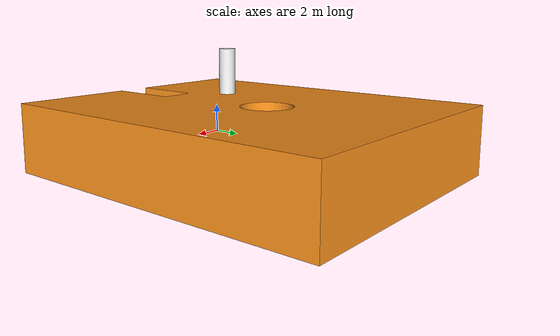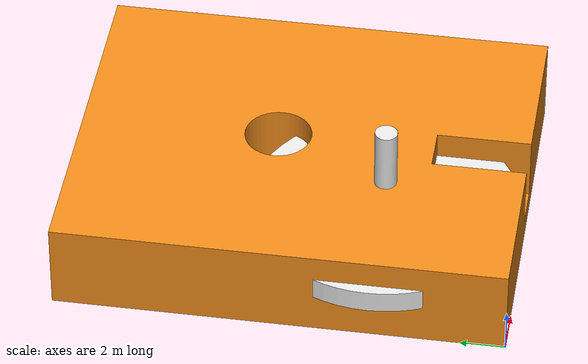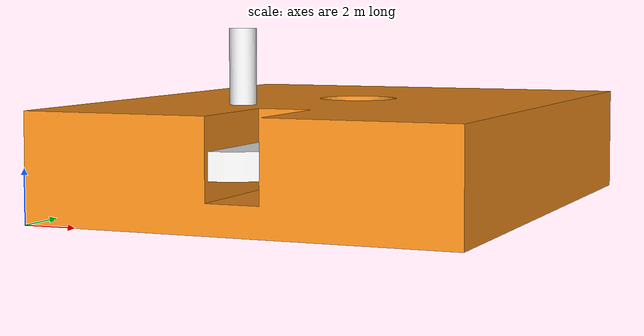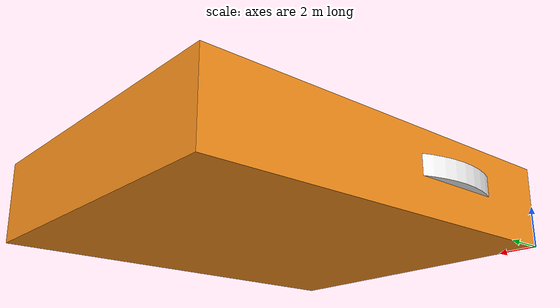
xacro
<?xml version="1.0"?>
<!-- Revolute-Revolute Manipulator -->
<robot name="head" xmlns:xacro="http://www.ros.org/wiki/xacro">

  <!-- Constants for robot dimensions -->
  <xacro:property name="PI" value="3.1415926535897931"/>
  <xacro:property name="width" value="0.1" /> <!-- Square dimensions (widthxwidth) of beams -->
  <xacro:property name="height1" value="2.0" /> <!-- Link base -->
  <xacro:property name="height2" value="2" /> <!-- Link 2 -->
  <xacro:property name="height3" value="2" /> <!-- Link 3 -->
  <xacro:property name="disc_width" value="1.2" /> <!-- The diameter of disc -->
  <xacro:property name="axel_offset" value="0.05" /> <!-- Space btw top of beam and the each joint -->
  <xacro:property name="limit_lower" value="-1.57" /> <!-- Space btw top of beam and the each joint -->
  <xacro:property name="limit_upper" value="1.57" /> <!-- Space btw top of beam and the each joint -->
  <xacro:property name="limit_effort" value="30" /> <!-- Space btw top of beam and the each joint -->
  <xacro:property name="limit_velocity" value="30" /> <!-- Space btw top of beam and the each joint -->
  <xacro:property name="scale" value="0.4" />
  <xacro:property name="y_offset" value="0.14" />
  <xacro:property name="x_offset" value="0.10" />
  <xacro:property name="z_offset" value="0.10" />
  <xacro:property name="leftArm_offset" value="2.5" />
  <!-- Import all Gazebo-customization elements, including Gazebo colors -->
  <xacro:include filename="$(find rit_head_description)/urdf/rit_head.gazebo" />
  <!-- Import Rviz colors -->
  <xacro:include filename="$(find rit_head_description)/urdf/materials.xacro" />

  <!-- Used for fixing robot to Gazebo 'base_link' -->
  <link name="world"/>

  <joint name="fixed" type="fixed">
    <parent link="world"/>
    <child link="base"/>
  </joint>

  <!-- Base Link -->
  <link name="base">
    <collision>
      <origin xyz="0 0 ${height1/2}" rpy="0 0 0"/>
      <geometry>
	<box size="${width} ${width} ${height1}"/>
      </geometry>
    </collision>

    <visual>
      <origin xyz="0 0 0" rpy="0 0 0"/>
      <geometry>
	<mesh filename="package://rit_head_description/meshes/base.STL" scale="0.1 0.1 0.1"/>
	<!--box size="${width} ${width} ${height1}"/-->
      </geometry>
      <material name="orange"/>
    </visual>

    <inertial>
      <origin xyz="0 0 ${height1/2}" rpy="0 0 0"/>
      <mass value="3.34251506"/>
      <inertia
	  ixx="0.01399962" ixy="0.0" ixz="0.0"
	  iyy="0.00912518" iyz="-0.00120586"
	  izz="0.01961029"/>
    </inertial>
  </link>

  <joint name="base_disc" type="revolute">
    <parent link="base"/>
    <child link="disc"/>
    <origin xyz="${x_offset} ${width/2} ${height1-disc_width/2}" rpy="0 0 0"/>
    <axis xyz="0 0 1"/>
    <dynamics damping="0.7"/>
    <limit effort="${limit_effort}" lower="${limit_lower}" upper="${limit_upper}" velocity="${limit_velocity}" />
    <safety_controller k_velocity="100" k_position="15" soft_lower_limit="-1.9" soft_upper_limit="0.5" />
  </joint>

  <!-- Disc Link -->
  <link name="disc">
    <collision>
      <origin xyz="0 ${disc_width/2} 0" rpy="0 0 0"/>
      <geometry>
	<cylinder lenght="0.1" radius="${disc_width}/2"/>
      </geometry>
    </collision>

    <visual>
      <origin xyz="${-disc_width/2} 0 ${-disc_width/2}" rpy="0 0 0"/>
      <geometry>
	<mesh filename="package://rit_head_description/meshes/disc.STL" scale="0.1 0.1 0.1"/>
	<!--box size="${elbow_width} ${elbow_width} ${elbow_width}"/-->
      </geometry>
      <material name="white"/>
    </visual>

    <inertial>
      <origin xyz="0 ${disc_width/2} 0" rpy="0 0 0"/>
      <mass value="0.31442453"/>
      <inertia
	  ixx="0.00029478" ixy="0.0" ixz="0.0"
	  iyy="0.00029817" iyz="-0.00000012"
	  izz="0.00055502"/>
    </inertial>
  </link>
</robot>
